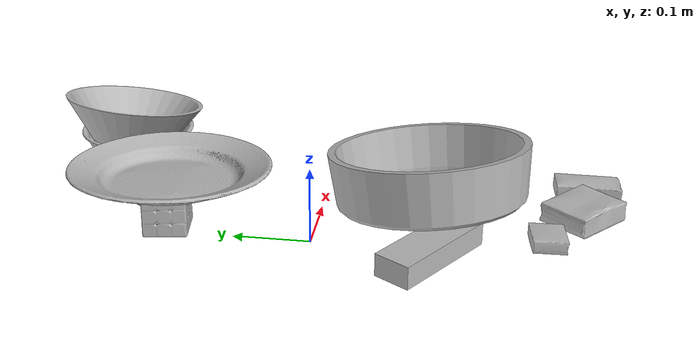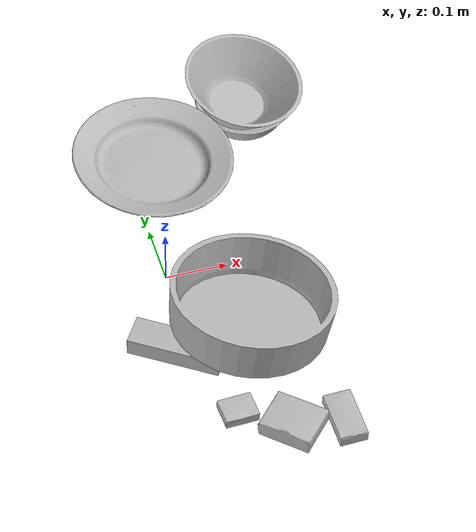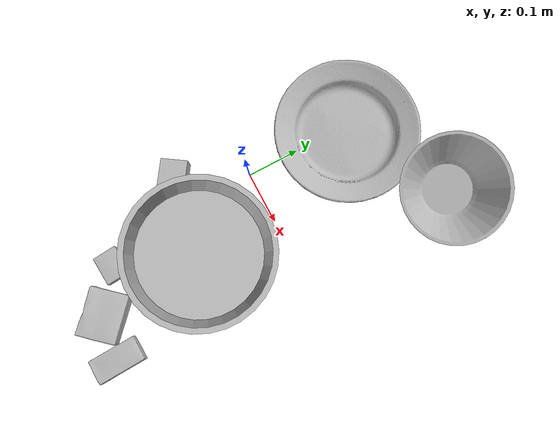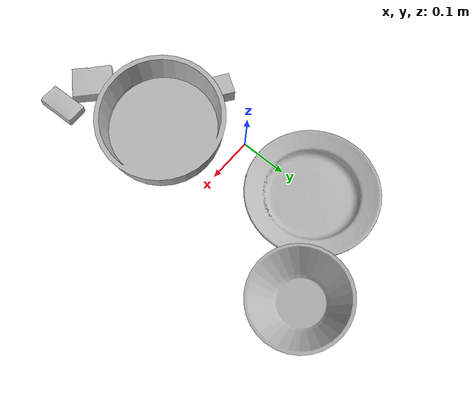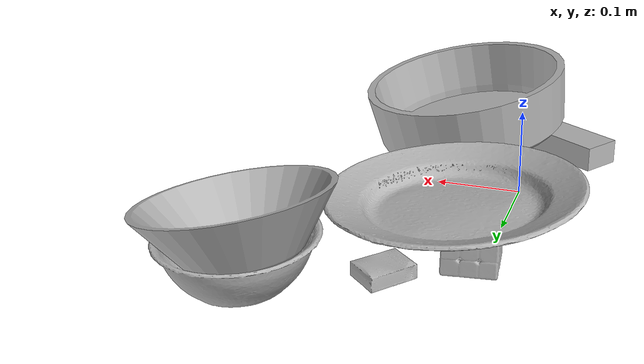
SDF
<sdf version="1.4">
  <world name="default">
    <light name="light1" type="point">
      <pose>0 0 1 0 0 0</pose>
      <diffuse>3 3 3 1</diffuse>
      <specular>3 3 3 1</specular>
    </light>
    <light name="light2" type="point">
      <pose>0 0.5 2 0 0 0</pose>
      <diffuse>1 1 1 1</diffuse>
      <specular>1 1 1 1</specular>
    </light>
    <light name="light3" type="point">
      <pose>0 0.5 2 0 0 0</pose>
      <diffuse>3 3 3 1</diffuse>
      <specular>3 3 3 1</specular>
    </light>
    <scene>
      <ambient>0.7 0.7 0.7</ambient>
    </scene>
    <model name="box1">
      <link name="link_box1">
        <collision name="default">
          <geometry>
            <mesh>
              <uri>model://sugar_box/collision_meshes/collision.obj</uri>
              <scale>0.5 0.5 0.5</scale>
            </mesh>
          </geometry>
          <surface>
            <friction>
              <ode>
                <mu>0.5</mu>
                <mu2>0.5</mu2>
              </ode>
            </friction>
          <contact>
        <ode>
            <max_vel>0</max_vel>
            <min_depth>0.0001</min_depth>
            <kp>1e8</kp>
        </ode>
    </contact></surface>
        </collision>
        <visual name="default">
          <geometry>
            <mesh>
              <uri>model://sugar_box/visual_meshes/visual.dae</uri>
              <scale>0.5 0.5 0.5</scale>
            </mesh>
          </geometry>
        </visual>
        <inertial>
          <mass>0.05968111753463745</mass>
          <pose>0.0005171863595023751 1.924554817378521e-05 -0.00018182402709499002 -0.00040462627153530444 0.0010506635220302928 0.002615378323275012</pose>
          <inertia>
            <ixx>1.2431535e-05</ixx>
            <iyy>4.0181283e-05</iyy>
            <izz>4.8101785e-05</izz>
            <ixy>0</ixy>
            <ixz>0</ixz>
            <iyz>0</iyz>
          </inertia>
        </inertial>
      </link>
      <pose>0.18744580447673798 -0.35569220781326294 0.011399304494261742 0.0007744133441521134 -0.023433295568993852 1.5947537073220752</pose>
    </model>
    <model name="box11">
      <link name="link_box11">
        <collision name="default">
          <geometry>
            <mesh>
              <uri>model://cracker_box/collision_meshes/collision.obj</uri>
              <scale>0.25 0.25 0.25</scale>
            </mesh>
          </geometry>
          <surface>
            <friction>
              <ode>
                <mu>0.5</mu>
                <mu2>0.5</mu2>
              </ode>
            </friction>
          <contact>
        <ode>
            <max_vel>0</max_vel>
            <min_depth>0.0001</min_depth>
            <kp>1e8</kp>
        </ode>
    </contact></surface>
        </collision>
        <visual name="default">
          <geometry>
            <mesh>
              <uri>model://cracker_box/visual_meshes/visual.dae</uri>
              <scale>0.25 0.25 0.25</scale>
            </mesh>
          </geometry>
        </visual>
        <inertial>
          <mass>0.04741516709327698</mass>
          <pose>0.0002366035187151283 6.358561950037256e-05 -0.0004257383698131889 -0.00031620780351981393 -0.01110649053153066 0.0025467950031323855</pose>
          <inertia>
            <ixx>7.537689e-06</ixx>
            <iyy>1.2446206e-05</iyy>
            <izz>1.7761875e-05</izz>
            <ixy>0</ixy>
            <ixz>0</ixz>
            <iyz>0</iyz>
          </inertia>
        </inertial>
      </link>
      <pose>0.08769264817237854 0.23999856412410736 0.009096027351915836 -0.014050399633919769 -0.00501677936179533 0.8937665374076781</pose>
    </model>
    <model name="box2">
      <link name="link_box2">
        <collision name="default">
          <geometry>
            <mesh>
              <uri>model://jenga/collision_meshes/collision.obj</uri>
              <scale>1.0 1.0 1.0</scale>
            </mesh>
          </geometry>
          <surface>
            <friction>
              <ode>
                <mu>0.5</mu>
                <mu2>0.5</mu2>
              </ode>
            </friction>
          <contact>
        <ode>
            <max_vel>0</max_vel>
            <min_depth>0.0001</min_depth>
            <kp>1e8</kp>
        </ode>
    </contact></surface>
        </collision>
        <visual name="default">
          <geometry>
            <mesh>
              <uri>model://jenga/visual_meshes/visual.dae</uri>
              <scale>1.0 1.0 1.0</scale>
            </mesh>
          </geometry>
        </visual>
        <inertial>
          <mass>0.17569443583488464</mass>
          <pose>-2.502855807051674e-07 -0.00010250010382151231 -4.0923401684267446e-05 0.0 -7.342153480750062e-07 0.0</pose>
          <inertia>
            <ixx>4.8618913e-05</ixx>
            <iyy>0.00032944046</iyy>
            <izz>0.0003517057</izz>
            <ixy>0</ixy>
            <ixz>0</ixz>
            <iyz>0</iyz>
          </inertia>
        </inertial>
      </link>
      <pose>-0.023196425288915634 -0.15124936401844025 0.01500206533819437 -8.520446029002167e-05 -3.388008998897189e-07 2.547949645429478</pose>
    </model>
    <model name="box21">
      <link name="link_box21">
        <collision name="default">
          <geometry>
            <mesh>
              <uri>model://rubiks_cube/collision_meshes/collision.obj</uri>
              <scale>1.0 1.0 1.0</scale>
            </mesh>
          </geometry>
          <surface>
            <friction>
              <ode>
                <mu>0.5</mu>
                <mu2>0.5</mu2>
              </ode>
            </friction>
          <contact>
        <ode>
            <max_vel>0</max_vel>
            <min_depth>0.0001</min_depth>
            <kp>1e8</kp>
        </ode>
    </contact></surface>
        </collision>
        <visual name="default">
          <geometry>
            <mesh>
              <uri>model://rubiks_cube/visual_meshes/visual.dae</uri>
              <scale>1.0 1.0 1.0</scale>
            </mesh>
          </geometry>
        </visual>
        <inertial>
          <mass>0.16427944600582123</mass>
          <pose>2.6721041649580002e-05 5.2569666877388954e-05 -7.2643156272533815e-06 -0.05467299197426534 -0.0981400693449792 -0.034455479534688374</pose>
          <inertia>
            <ixx>9.0775415e-05</ixx>
            <iyy>9.0352085e-05</iyy>
            <izz>9.152764e-05</izz>
            <ixy>0</ixy>
            <ixz>0</ixz>
            <iyz>0</iyz>
          </inertia>
        </inertial>
      </link>
      <pose>0.012211511842906475 0.18913021683692932 0.028678124770522118 -6.812289507428612e-05 -2.2898903609292348e-05 1.7408304258669678</pose>
    </model>
    <model name="box3">
      <link name="link_box3">
        <collision name="default">
          <geometry>
            <mesh>
              <uri>model://gelatin_box/collision_meshes/collision.obj</uri>
              <scale>1.0 1.0 1.0</scale>
            </mesh>
          </geometry>
          <surface>
            <friction>
              <ode>
                <mu>0.5</mu>
                <mu2>0.5</mu2>
              </ode>
            </friction>
          <contact>
        <ode>
            <max_vel>0</max_vel>
            <min_depth>0.0001</min_depth>
            <kp>1e8</kp>
        </ode>
    </contact></surface>
        </collision>
        <visual name="default">
          <geometry>
            <mesh>
              <uri>model://gelatin_box/visual_meshes/visual.dae</uri>
              <scale>1.0 1.0 1.0</scale>
            </mesh>
          </geometry>
        </visual>
        <inertial>
          <mass>0.21197354793548584</mass>
          <pose>0.0004319618456065655 0.00011156872642459348 -0.0003640321083366871 -0.0010503719594585892 -0.004755818227500045 0.016440553882781303</pose>
          <inertia>
            <ixx>0.00014963602</ixx>
            <iyy>0.00010688423</iyy>
            <izz>0.00022777937</izz>
            <ixy>0</ixy>
            <ixz>0</ixz>
            <iyz>0</iyz>
          </inertia>
        </inertial>
      </link>
      <pose>0.10754144191741943 -0.34349173307418823 0.01516831386834383 0.005597272149235052 -0.007304288226344999 -2.3178532166431483</pose>
    </model>
    <model name="box31">
      <link name="link_box31">
        <collision name="default">
          <geometry>
            <mesh>
              <uri>model://pudding_box/collision_meshes/collision.obj</uri>
              <scale>0.5 0.5 0.5</scale>
            </mesh>
          </geometry>
          <surface>
            <friction>
              <ode>
                <mu>0.5</mu>
                <mu2>0.5</mu2>
              </ode>
            </friction>
          <contact>
        <ode>
            <max_vel>0</max_vel>
            <min_depth>0.0001</min_depth>
            <kp>1e8</kp>
        </ode>
    </contact></surface>
        </collision>
        <visual name="default">
          <geometry>
            <mesh>
              <uri>model://pudding_box/visual_meshes/visual.dae</uri>
              <scale>0.5 0.5 0.5</scale>
            </mesh>
          </geometry>
        </visual>
        <inertial>
          <mass>0.056796859949827194</mass>
          <pose>0.00024474109522998333 0.0004033942532259971 -0.0002594413817860186 0.005213102251005844 -0.00660379641961884 0.02007983447872704</pose>
          <inertia>
            <ixx>1.605148e-05</ixx>
            <iyy>1.0799551e-05</iyy>
            <izz>2.3704206e-05</izz>
            <ixy>0</ixy>
            <ixz>0</ixz>
            <iyz>0</iyz>
          </inertia>
        </inertial>
      </link>
      <pose>0.033466145396232605 -0.29561126232147217 0.009862903505563736 0.022348537692676786 -0.011391723656993275 1.6401671890564335</pose>
    </model>
    <model name="plate1">
      <link name="link_plate1">
        <collision name="default">
          <geometry>
            <mesh>
              <uri>model://pan_tefal/collision_meshes/collision.obj</uri>
              <scale>1.0 1.0 1.0</scale>
            </mesh>
          </geometry>
          <surface>
            <friction>
              <ode>
                <mu>0.5</mu>
                <mu2>0.5</mu2>
              </ode>
            </friction>
          <contact>
        <ode>
            <max_vel>0</max_vel>
            <min_depth>0.0001</min_depth>
            <kp>1e8</kp>
        </ode>
    </contact></surface>
        </collision>
        <visual name="default">
          <geometry>
            <mesh>
              <uri>model://pan_tefal/visual_meshes/visual.dae</uri>
              <scale>1.0 1.0 1.0</scale>
            </mesh>
          </geometry>
        </visual>
        <inertial>
          <mass>1.4752264022827148</mass>
          <pose>-0.0001800210156943649 3.278951771790162e-05 -0.008514936082065105 0.0008190241607511121 -0.0003301478392365544 -0.33184922825406304</pose>
          <inertia>
            <ixx>0.010183416</ixx>
            <iyy>0.01024907</iyy>
            <izz>0.018745707</izz>
            <ixy>0</ixy>
            <ixz>0</ixz>
            <iyz>0</iyz>
          </inertia>
        </inertial>
      </link>
      <pose>0.09857208281755447 -0.1429288536310196 0.059009261429309845 -0.17986622540452984 7.227097919230145e-05 -0.9843834319644963</pose>
    </model>
    <model name="bowl1">
      <link name="link_bowl1">
        <collision name="default">
          <geometry>
            <mesh>
              <uri>model://bowl/collision_meshes/collision.obj</uri>
              <scale>1.0 1.0 1.0</scale>
            </mesh>
          </geometry>
          <surface>
            <friction>
              <ode>
                <mu>0.5</mu>
                <mu2>0.5</mu2>
              </ode>
            </friction>
          <contact>
        <ode>
            <max_vel>0</max_vel>
            <min_depth>0.0001</min_depth>
            <kp>1e8</kp>
        </ode>
    </contact></surface>
        </collision>
        <visual name="default">
          <geometry>
            <mesh>
              <uri>model://bowl/visual_meshes/visual.dae</uri>
              <scale>1.0 1.0 1.0</scale>
            </mesh>
          </geometry>
        </visual>
        <inertial>
          <mass>0.13335108757019043</mass>
          <pose>0.00020445126574486494 -0.0010302079608663917 -0.0008042646804824471 -0.01576397865263616 0.014546905041115984 0.7140477796865206</pose>
          <inertia>
            <ixx>0.000306318</ixx>
            <iyy>0.00029947367</iyy>
            <izz>0.00051533245</izz>
            <ixy>0</ixy>
            <ixz>0</ixz>
            <iyz>0</iyz>
          </inertia>
        </inertial>
      </link>
      <pose>0.21530523896217346 0.2914433479309082 0.02778071165084839 -2.074703623894786e-05 2.56988483249273e-05 -0.8046760357348293</pose>
    </model>
    <model name="plate2">
      <link name="link_plate2">
        <collision name="default">
          <geometry>
            <mesh>
              <uri>model://plate/collision_meshes/collision.obj</uri>
              <scale>1.0 1.0 1.0</scale>
            </mesh>
          </geometry>
          <surface>
            <friction>
              <ode>
                <mu>0.5</mu>
                <mu2>0.5</mu2>
              </ode>
            </friction>
          <contact>
        <ode>
            <max_vel>0</max_vel>
            <min_depth>0.0001</min_depth>
            <kp>1e8</kp>
        </ode>
    </contact></surface>
        </collision>
        <visual name="default">
          <geometry>
            <mesh>
              <uri>model://plate/visual_meshes/visual.dae</uri>
              <scale>1.0 1.0 1.0</scale>
            </mesh>
          </geometry>
        </visual>
        <inertial>
          <mass>0.1753290891647339</mass>
          <pose>-0.0006044620531611145 0.0002782598021440208 -0.0010561987292021513 0.0022188066246853514 -0.003225466953145419 0.45260347799947726</pose>
          <inertia>
            <ixx>0.00082019315</ixx>
            <iyy>0.00081234827</iyy>
            <izz>0.0016041752</izz>
            <ixy>0</ixy>
            <ixz>0</ixz>
            <iyz>0</iyz>
          </inertia>
        </inertial>
      </link>
      <pose>0.030995290726423264 0.18656480312347412 0.07003400474786758 -0.042000925967868266 -0.05481613767929527 -2.580835491138579</pose>
    </model>
    <model name="bowl2">
      <link name="link_bowl2">
        <collision name="default">
          <geometry>
            <mesh>
              <uri>model://bowl_a/collision_meshes/collision.obj</uri>
              <scale>1.0 1.0 1.0</scale>
            </mesh>
          </geometry>
          <surface>
            <friction>
              <ode>
                <mu>0.5</mu>
                <mu2>0.5</mu2>
              </ode>
            </friction>
          <contact>
        <ode>
            <max_vel>0</max_vel>
            <min_depth>0.0001</min_depth>
            <kp>1e8</kp>
        </ode>
    </contact></surface>
        </collision>
        <visual name="default">
          <geometry>
            <mesh>
              <uri>model://bowl_a/visual_meshes/visual.dae</uri>
              <scale>1.0 1.0 1.0</scale>
            </mesh>
          </geometry>
        </visual>
        <inertial>
          <mass>0.4813200831413269</mass>
          <pose>0.0002786751138046384 4.731064836960286e-05 -0.0013765294570475817 -0.0009805320964546374 -0.0010938264681851768 -0.19124047933057892</pose>
          <inertia>
            <ixx>0.0013703406</ixx>
            <iyy>0.0013787533</iyy>
            <izz>0.0024372027</izz>
            <ixy>0</ixy>
            <ixz>0</ixz>
            <iyz>0</iyz>
          </inertia>
        </inertial>
      </link>
      <pose>0.20940947532653809 0.2957085967063904 0.06544241309165955 0.10630103362631987 0.17665283680591906 0.04086667034901679</pose>
    </model>
  <physics type="ode">
      <max_contacts>50</max_contacts>
      <ode>
        <solver>
          <type>quick</type>
          <iters>75</iters>
        </solver>
        <constraints>
          <contact_max_correcting_vel>0</contact_max_correcting_vel>
          <contact_surface_layer>0</contact_surface_layer>
        </constraints>
      </ode>
    </physics></world>
</sdf>
